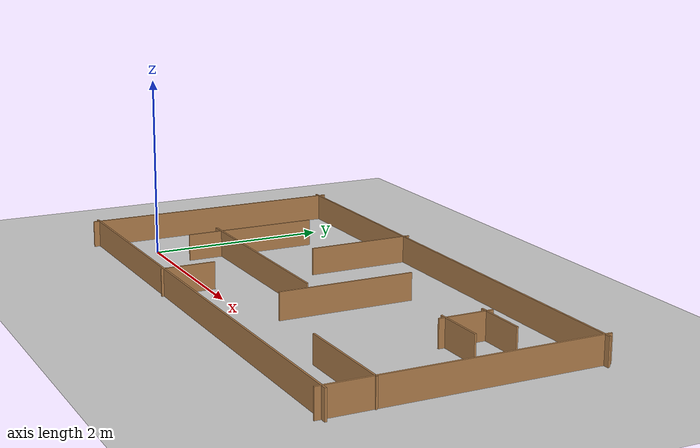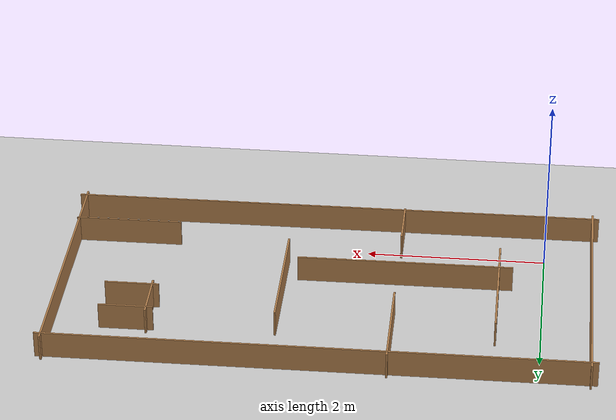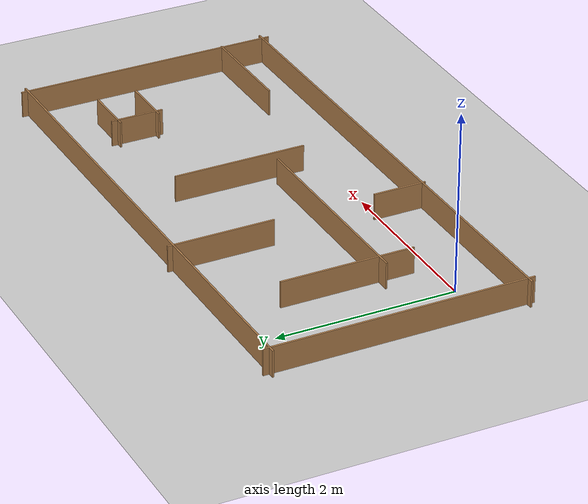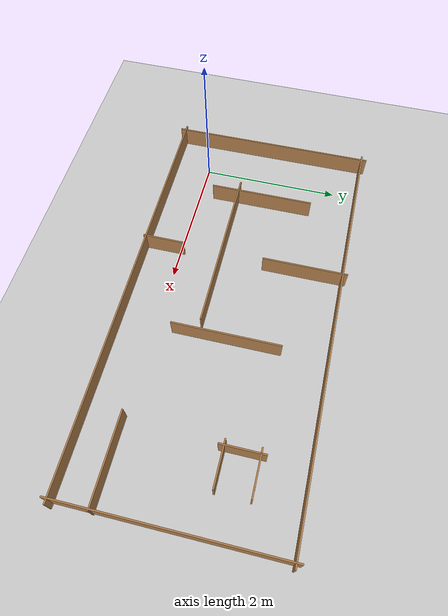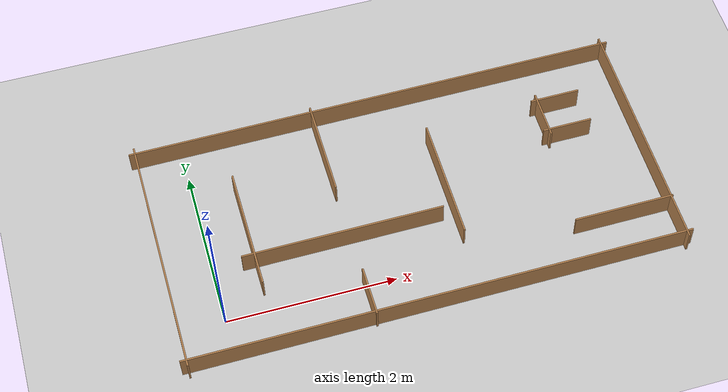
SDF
<sdf version="1.7">
 <world name="maze_world">
  <plugin filename="gz-sim-physics-system" name="gz::sim::systems::Physics"/>
  <plugin filename="gz-sim-user-commands-system" name="gz::sim::systems::UserCommands"/>
  <plugin filename="gz-sim-scene-broadcaster-system" name="gz::sim::systems::SceneBroadcaster"/>
  <plugin filename="gz-sim-sensors-system" name="gz::sim::systems::Sensors">
   <render_engine>ogre2</render_engine>
  </plugin>
  <physics name="1ms" type="ode">
   <max_step_size>0.001</max_step_size>
   <real_time_factor>1</real_time_factor>
   <gravity>0 0 -9.81</gravity>
  </physics>
  <light type="directional" name="sun">
   <pose>0 0 10 0 0 0</pose>
   <diffuse>1 1 1 1</diffuse>
   <specular>0.5 0.5 0.5 1</specular>
   <attenuation>
    <range>1000</range>
    <constant>0.9</constant>
    <linear>0.01</linear>
    <quadratic>0.001</quadratic>
   </attenuation>
   <direction>-0.5 0.1 -0.9</direction>
  </light>
  <model name="ground_plane">
   <static>true</static>
   <link name="link">
    <collision name="collision">
     <geometry><plane><normal>0 0 1</normal><size>100 100</size></plane></geometry>
    </collision>
    <visual name="visual">
     <geometry><plane><normal>0 0 1</normal><size>100 100</size></plane></geometry>
     <material>
      <ambient>0.8 0.8 0.8 1</ambient>
      <diffuse>0.8 0.8 0.8 1</diffuse>
      <specular>0.8 0.8 0.8 1</specular>
     </material>
    </visual>
   </link>
  </model>
  <model name="world_model">
   <pose>2.39946 -0.628779 -1.093 0 -0 -3.13455</pose>
   <link name="Wall_16">
    <collision name="Wall_16_Collision">
     <geometry><box><size>3 0.02 0.3</size></box></geometry>
     <pose>0 0 1.25 0 -0 0</pose>
    </collision>
    <visual name="Wall_16_Visual">
     <pose>0 0 1.25 0 -0 0</pose>
     <geometry><box><size>3 0.02 0.3</size></box></geometry>
     <material>
      <script><uri>file://media/materials/scripts/gazebo.material</uri><name>Gazebo/Wood</name></script>
      <ambient>1 1 1 1</ambient>
     </material>
     <meta><layer>0</layer></meta>
    </visual>
    <pose>-2.925 -1.5575 0 0 -0 -1.5708</pose>
   </link>
   <link name="Wall_17">
    <collision name="Wall_17_Collision">
     <geometry><box><size>6 0.02 0.3</size></box></geometry>
     <pose>0 0 1.25 0 -0 0</pose>
    </collision>
    <visual name="Wall_17_Visual">
     <pose>0 0 1.25 0 -0 0</pose>
     <geometry><box><size>6 0.02 0.3</size></box></geometry>
     <material>
      <script><uri>file://media/materials/scripts/gazebo.material</uri><name>Gazebo/Wood</name></script>
      <ambient>1 1 1 1</ambient>
     </material>
     <meta><layer>0</layer></meta>
    </visual>
    <pose>0 -2.9825 0 0 -0 0</pose>
   </link>
   <link name="Wall_18">
    <collision name="Wall_18_Collision">
     <geometry><box><size>3 0.02 0.3</size></box></geometry>
     <pose>0 0 1.25 0 -0 0</pose>
    </collision>
    <visual name="Wall_18_Visual">
     <pose>0 0 1.25 0 -0 0</pose>
     <geometry><box><size>3 0.02 0.3</size></box></geometry>
     <material>
      <script><uri>file://media/materials/scripts/gazebo.material</uri><name>Gazebo/Wood</name></script>
      <ambient>1 1 1 1</ambient>
     </material>
     <meta><layer>0</layer></meta>
    </visual>
    <pose>2.925 -1.5575 0 0 -0 1.5708</pose>
   </link>
   <link name="Wall_19">
    <collision name="Wall_19_Collision">
     <geometry><box><size>6 0.02 0.3</size></box></geometry>
     <pose>0 0 1.25 0 -0 0</pose>
    </collision>
    <visual name="Wall_19_Visual">
     <pose>0 0 1.25 0 -0 0</pose>
     <geometry><box><size>6 0.02 0.3</size></box></geometry>
     <material>
      <script><uri>file://media/materials/scripts/gazebo.material</uri><name>Gazebo/Wood</name></script>
      <ambient>1 1 1 1</ambient>
     </material>
     <meta><layer>0</layer></meta>
    </visual>
    <pose>0 -0.1325 0 0 -0 3.14159</pose>
   </link>
   <link name="Wall_21">
    <collision name="Wall_21_Collision">
     <geometry><box><size>1.5 0.02 0.3</size></box></geometry>
     <pose>0.15 0 1.25 0 -0 0</pose>
    </collision>
    <visual name="Wall_21_Visual">
     <pose>0.15 0 1.25 0 -0 0</pose>
     <geometry><box><size>1.5 0.02 0.3</size></box></geometry>
     <material>
      <script><uri>file://media/materials/scripts/gazebo.material</uri><name>Gazebo/Wood</name></script>
      <ambient>1 1 1 1</ambient>
     </material>
     <meta><layer>0</layer></meta>
    </visual>
    <pose>-0.485 -1.4675 0 0 -0 -1.5708</pose>
   </link>
   <link name="Wall_34">
    <collision name="Wall_34_Collision">
     <geometry><box><size>2.4 0.02 0.3</size></box></geometry>
     <pose>0.15 0 1.25 0 -0 0</pose>
    </collision>
    <visual name="Wall_34_Visual">
     <pose>0.15 0 1.25 0 -0 0</pose>
     <geometry><box><size>2.4 0.02 0.3</size></box></geometry>
     <material>
      <script><uri>file://media/materials/scripts/gazebo.material</uri><name>Gazebo/Wood</name></script>
      <ambient>1 1 1 1</ambient>
     </material>
     <meta><layer>0</layer></meta>
    </visual>
    <pose>0.7 -1.2425 0 0 -0 0</pose>
   </link>
   <link name="Wall_36">
    <collision name="Wall_36_Collision">
     <geometry><box><size>1.5 0.02 0.3</size></box></geometry>
     <pose>0.15 0 1.25 0 -0 0</pose>
    </collision>
    <visual name="Wall_36_Visual">
     <pose>0.15 0 1.25 0 -0 0</pose>
     <geometry><box><size>1.5 0.02 0.3</size></box></geometry>
     <material>
      <script><uri>file://media/materials/scripts/gazebo.material</uri><name>Gazebo/Wood</name></script>
      <ambient>1 1 1 1</ambient>
     </material>
     <meta><layer>0</layer></meta>
    </visual>
    <pose>1.895 -1.4475 0 0 -0 -1.5708</pose>
   </link>
   <link name="Wall_42">
    <collision name="Wall_42_Collision">
     <geometry><box><size>1.2 0.02 0.3</size></box></geometry>
     <pose>0 0 1.25 0 -0 0</pose>
    </collision>
    <visual name="Wall_42_Visual">
     <pose>0 0 1.25 0 -0 0</pose>
     <geometry><box><size>1.2 0.02 0.3</size></box></geometry>
     <material>
      <script><uri>file://media/materials/scripts/gazebo.material</uri><name>Gazebo/Wood</name></script>
      <ambient>1 1 1 1</ambient>
     </material>
     <meta><layer>0</layer></meta>
    </visual>
    <pose>-2.35 -0.6325 0 0 -0 3.14159</pose>
   </link>
   <link name="Wall_44">
    <collision name="Wall_44_Collision">
     <geometry><box><size>0.6 0.02 0.3</size></box></geometry>
     <pose>0 0 1.25 0 -0 0</pose>
    </collision>
    <visual name="Wall_44_Visual">
     <pose>0 0 1.25 0 -0 0</pose>
     <geometry><box><size>0.6 0.02 0.3</size></box></geometry>
     <material>
      <script><uri>file://media/materials/scripts/gazebo.material</uri><name>Gazebo/Wood</name></script>
      <ambient>1 1 1 1</ambient>
     </material>
     <meta><layer>0</layer></meta>
    </visual>
    <pose>0.775 -0.3975 0 0 -0 1.5708</pose>
   </link>
   <link name="Wall_64">
    <collision name="Wall_64_Collision">
     <geometry><box><size>0.6 0.02 0.3</size></box></geometry>
     <pose>0 0 1.25 0 -0 0</pose>
    </collision>
    <visual name="Wall_64_Visual">
     <pose>0 0 1.25 0 -0 0</pose>
     <geometry><box><size>0.6 0.02 0.3</size></box></geometry>
     <material>
      <script><uri>file://media/materials/scripts/gazebo.material</uri><name>Gazebo/Wood</name></script>
      <ambient>1 1 1 1</ambient>
     </material>
     <meta><layer>0</layer></meta>
    </visual>
    <pose>-2.11 -1.9325 0 0 -0 0</pose>
   </link>
   <link name="Wall_65">
    <collision name="Wall_65_Collision">
     <geometry><box><size>0.600111 0.02 0.3</size></box></geometry>
     <pose>0 0 1.25 0 -0 0</pose>
    </collision>
    <visual name="Wall_65_Visual">
     <pose>0 0 1.25 0 -0 0</pose>
     <geometry><box><size>0.600111 0.02 0.3</size></box></geometry>
     <material>
      <script><uri>file://media/materials/scripts/gazebo.material</uri><name>Gazebo/Wood</name></script>
      <ambient>1 1 1 1</ambient>
     </material>
     <meta><layer>0</layer></meta>
    </visual>
    <pose>-1.885 -2.1575 0 0 -0 -1.5708</pose>
   </link>
   <link name="Wall_66">
    <collision name="Wall_66_Collision">
     <geometry><box><size>0.6 0.02 0.3</size></box></geometry>
     <pose>0 0 1.25 0 -0 0</pose>
    </collision>
    <visual name="Wall_66_Visual">
     <pose>0 0 1.25 0 -0 0</pose>
     <geometry><box><size>0.6 0.02 0.3</size></box></geometry>
     <material>
      <script><uri>file://media/materials/scripts/gazebo.material</uri><name>Gazebo/Wood</name></script>
      <ambient>1 1 1 1</ambient>
     </material>
     <meta><layer>0</layer></meta>
    </visual>
    <pose>-2.11 -2.3825 0 0 -0 3.14159</pose>
   </link>
   <link name="Wall_68">
    <collision name="Wall_68_Collision">
     <geometry><box><size>1.2 0.02 0.3</size></box></geometry>
     <pose>0 0 1.25 0 -0 0</pose>
    </collision>
    <visual name="Wall_68_Visual">
     <pose>0 0 1.25 0 -0 0</pose>
     <geometry><box><size>1.2 0.02 0.3</size></box></geometry>
     <material>
      <script><uri>file://media/materials/scripts/gazebo.material</uri><name>Gazebo/Wood</name></script>
      <ambient>1 1 1 1</ambient>
     </material>
     <meta><layer>0</layer></meta>
    </visual>
    <pose>0.775 -2.4475 0 0 -0 1.5708</pose>
   </link>
   <static>1</static>
  </model>
 </world>
</sdf>
